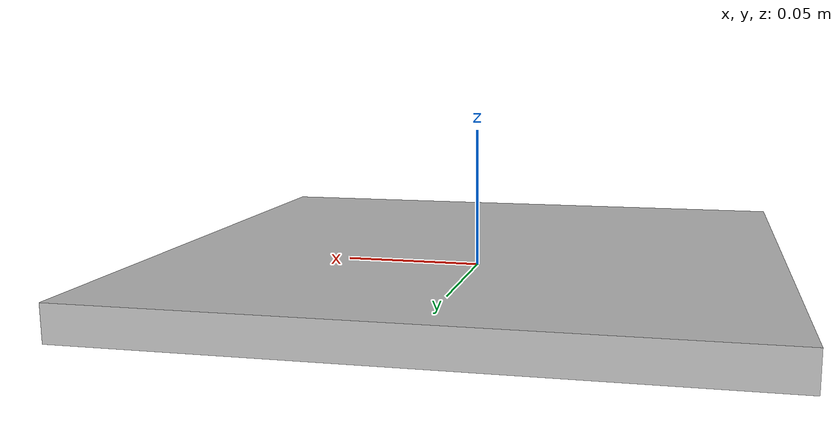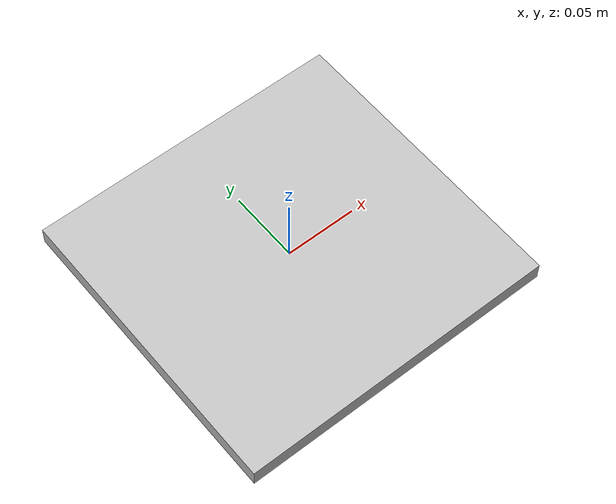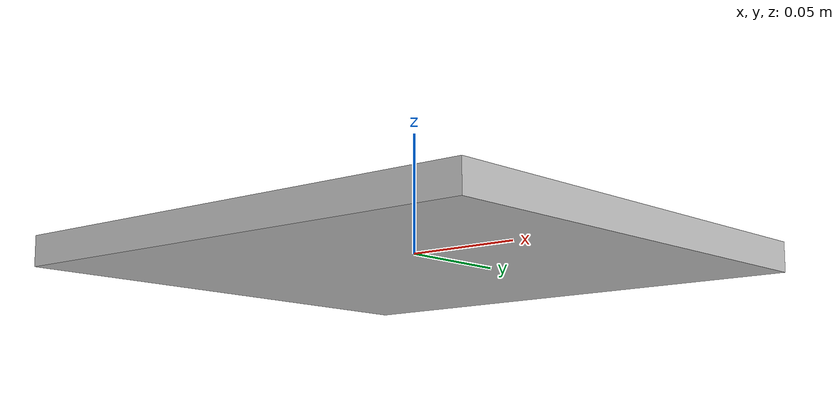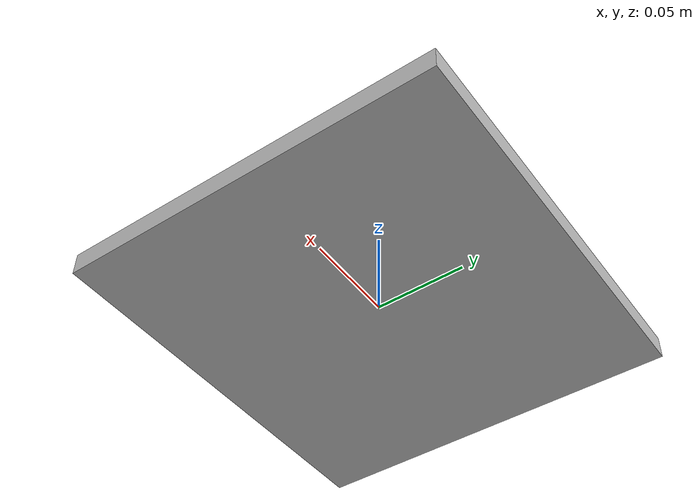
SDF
<?xml version="1.0"?>
<sdf version="1.7">
  <model name="iiwa_base_metal_plate">
    <link name="iiwa_base_metal_plate_base_link">
      <inertial>
        <mass>0.5</mass>
        <inertia>
          <ixx>1e-2</ixx>
          <ixy>0</ixy>
          <ixz>0</ixz>
          <iyy>1e-2</iyy>
          <iyz>0</iyz>
          <izz>1e-2</izz>
        </inertia>
      </inertial>
      <pose>0 0 0 0 0 0</pose>

      <visual name="visual">
        <geometry>
          <box>
            <size>0.22 0.21 0.0127</size>
          </box>
        </geometry>
        <material>
          <diffuse>0.75 0.75 0.75 1.0</diffuse>
        </material>
      </visual>

      <collision name="collision">
        <geometry>
          <box>
            <size>0.22 0.21 0.0127</size>
          </box>
        </geometry>
        <drake:proximity_properties>
          <drake:compliant_hydroelastic/>
          <drake:hydroelastic_modulus>1e5</drake:hydroelastic_modulus>
          <drake:mesh_resolution_hint>0.005</drake:mesh_resolution_hint>
          <drake:mu_dynamic>1</drake:mu_dynamic>
          <drake:mu_static>1</drake:mu_static>
        </drake:proximity_properties>
      </collision>
    </link>
  </model>
</sdf>
